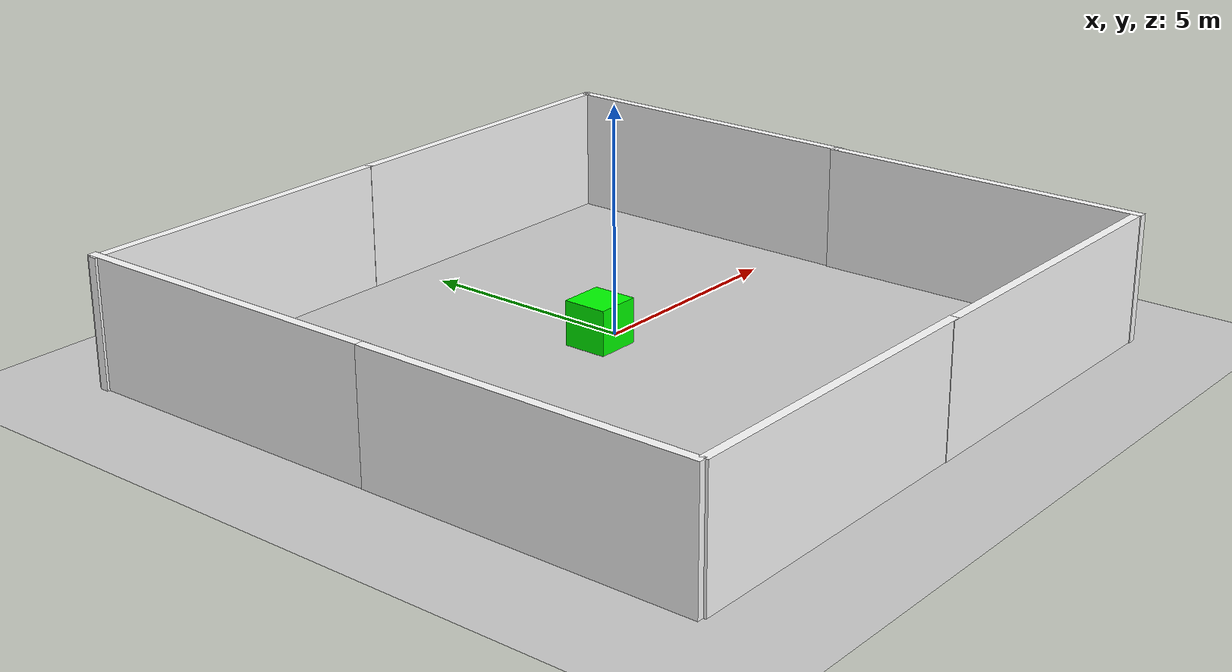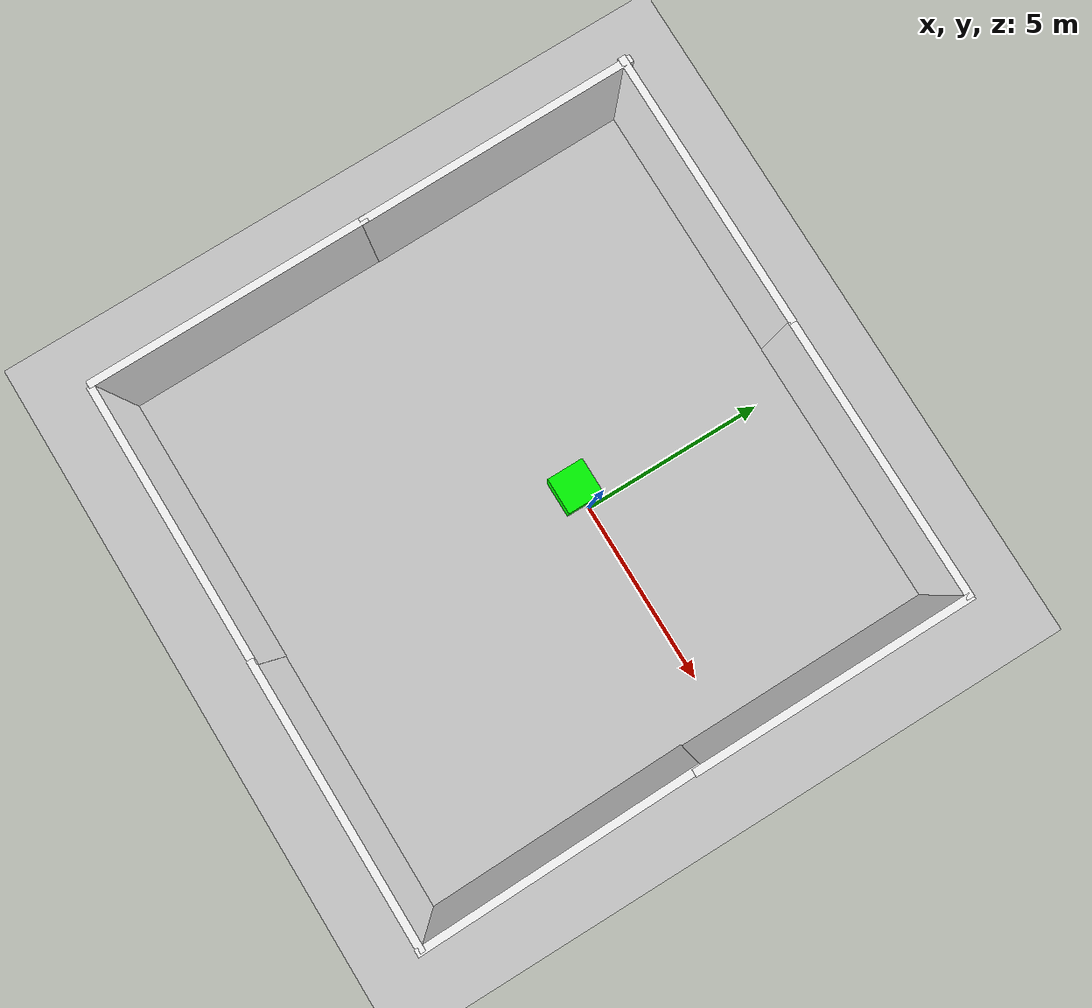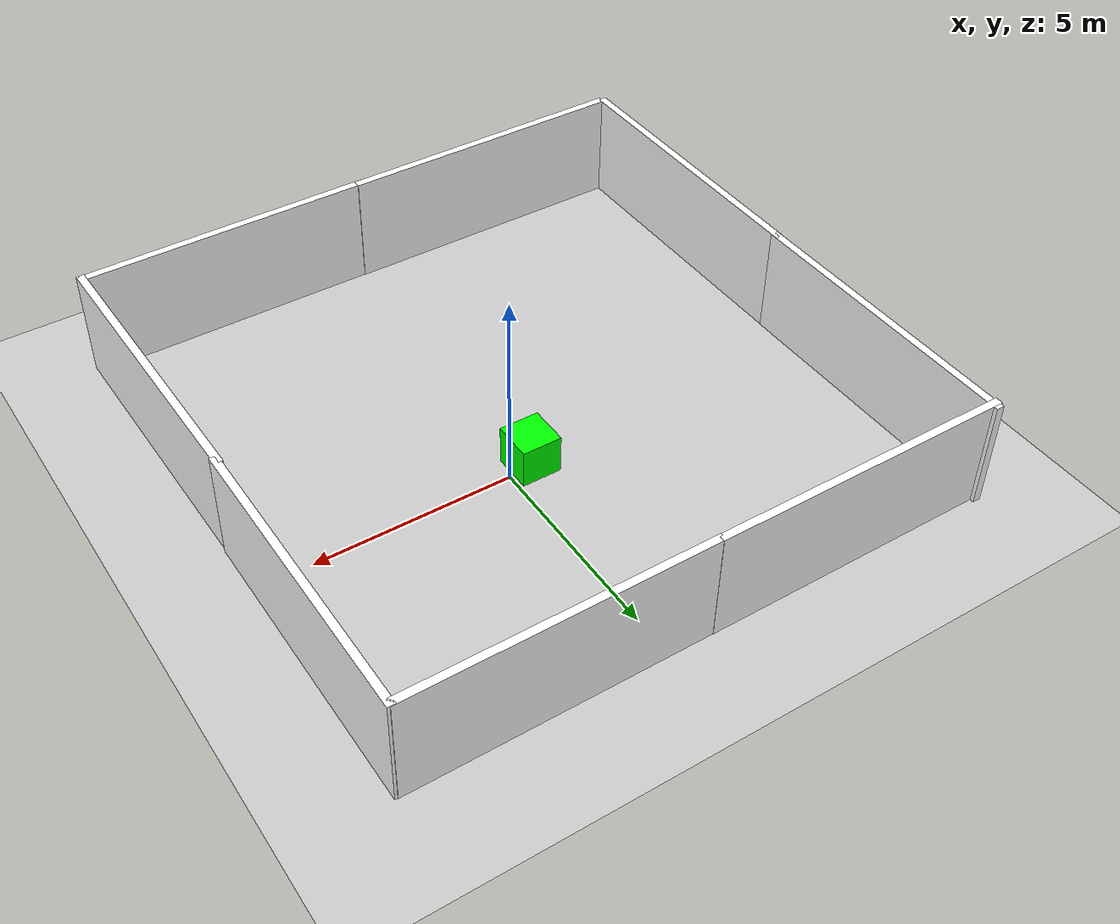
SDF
<?xml version="1.0" ?>
<sdf version='1.10'>
  <world name='empty'>
    <physics name='1ms' type='ignored'>
      <max_step_size>0.001</max_step_size>
      <real_time_factor>1</real_time_factor>
      <real_time_update_rate>1000</real_time_update_rate>
    </physics>
    <plugin name='gz::sim::systems::Physics' filename='gz-sim-physics-system'/>
    <plugin name='gz::sim::systems::UserCommands' filename='gz-sim-user-commands-system'/>
    <plugin name='gz::sim::systems::SceneBroadcaster' filename='gz-sim-scene-broadcaster-system'/>
    <plugin name='gz::sim::systems::Contact' filename='gz-sim-contact-system'/>
    <!-- Generates rendering sensor data -->
    <plugin
      filename="libgz-sim-sensors-system.so"
      name="gz::sim::systems::Sensors">
      <!-- ogre2 not working with just the MESA_GL_VERSION_OVERRIDE=3.3 trick -->
      <render_engine>ogre</render_engine>
    </plugin>

    <gravity>0 0 -9.8000000000000007</gravity>
    <magnetic_field>5.5644999999999998e-06 2.2875799999999999e-05 -4.2388400000000002e-05</magnetic_field>
    <atmosphere type='adiabatic'/>
    <scene>
      <ambient>0.400000006 0.400000006 0.400000006 1</ambient>
      <background>0.699999988 0.699999988 0.699999988 1</background>
      <shadows>true</shadows>
    </scene>
    <model name='ground_plane'>
      <static>true</static>
      <link name='link'>
        <collision name='collision'>
          <geometry>
            <plane>
              <normal>0 0 1</normal>
              <size>100 100</size>
            </plane>
          </geometry>
          <surface>
            <friction>
              <ode/>
            </friction>
            <bounce/>
            <contact/>
          </surface>
        </collision>
        <visual name='visual'>
          <geometry>
            <plane>
              <normal>0 0 1</normal>
              <size>100 100</size>
            </plane>
          </geometry>
          <material>
            <ambient>0.800000012 0.800000012 0.800000012 1</ambient>
            <diffuse>0.800000012 0.800000012 0.800000012 1</diffuse>
            <specular>0.800000012 0.800000012 0.800000012 1</specular>
          </material>
        </visual>
        <pose>0 0 0 0 0 0</pose>
        <inertial>
          <pose>0 0 0 0 0 0</pose>
          <mass>1</mass>
          <inertia>
            <ixx>1</ixx>
            <ixy>0</ixy>
            <ixz>0</ixz>
            <iyy>1</iyy>
            <iyz>0</iyz>
            <izz>1</izz>
          </inertia>
        </inertial>
        <enable_wind>false</enable_wind>
      </link>
      <pose>0 0 0 0 0 0</pose>
      <self_collide>false</self_collide>
    </model>
    <model name='grey_wall'>
      <static>true</static>
      <link name='link'>
        <pose>0 0 1.3999999999999999 0 0 0</pose>
        <collision name='collision'>
          <geometry>
            <box>
              <size>7.5 0.20000000000000001 2.7999999999999998</size>
            </box>
          </geometry>
          <surface>
            <friction>
              <ode/>
            </friction>
            <bounce/>
            <contact/>
          </surface>
        </collision>
        <visual name='visual'>
          <cast_shadows>false</cast_shadows>
          <geometry>
            <box>
              <size>7.5 0.20000000000000001 2.7999999999999998</size>
            </box>
          </geometry>
          <material>
            <diffuse>1 1 1 1</diffuse>
            <specular>1 1 1 1</specular>
            <ambient>1 1 1 1</ambient>
            <pbr>
              <metal>
                <albedo_map>model://grey_wall/materials/textures/grey_wall.png</albedo_map>
              </metal>
            </pbr>
          </material>
        </visual>
        <inertial>
          <pose>0 0 0 0 0 0</pose>
          <mass>1</mass>
          <inertia>
            <ixx>1</ixx>
            <ixy>0</ixy>
            <ixz>0</ixz>
            <iyy>1</iyy>
            <iyz>0</iyz>
            <izz>1</izz>
          </inertia>
        </inertial>
        <enable_wind>false</enable_wind>
      </link>
      <pose>2.5893099308013916 6.0323982238769531 0 0 0 0</pose>
      <self_collide>false</self_collide>
    </model>
    <model name='grey_wall_0'>
      <static>true</static>
      <link name='link'>
        <pose>0 0 1.3999999999999999 0 0 0</pose>
        <collision name='collision'>
          <geometry>
            <box>
              <size>7.5 0.20000000000000001 2.7999999999999998</size>
            </box>
          </geometry>
          <surface>
            <friction>
              <ode/>
            </friction>
            <bounce/>
            <contact/>
          </surface>
        </collision>
        <visual name='visual'>
          <cast_shadows>false</cast_shadows>
          <geometry>
            <box>
              <size>7.5 0.20000000000000001 2.7999999999999998</size>
            </box>
          </geometry>
          <material>
            <diffuse>1 1 1 1</diffuse>
            <specular>1 1 1 1</specular>
            <ambient>1 1 1 1</ambient>
            <pbr>
              <metal>
                <albedo_map>model://grey_wall/materials/textures/grey_wall.png</albedo_map>
              </metal>
            </pbr>
          </material>
        </visual>
        <inertial>
          <pose>0 0 0 0 0 0</pose>
          <mass>1</mass>
          <inertia>
            <ixx>1</ixx>
            <ixy>0</ixy>
            <ixz>0</ixz>
            <iyy>1</iyy>
            <iyz>0</iyz>
            <izz>1</izz>
          </inertia>
        </inertial>
        <enable_wind>false</enable_wind>
      </link>
      <pose>-4.8437652587890625 6.0395498275756836 0 0 0 0</pose>
      <self_collide>false</self_collide>
    </model>
    <model name='grey_wall_1'>
      <static>true</static>
      <link name='link'>
        <pose>0 0 1.3999999999999999 0 0 0</pose>
        <collision name='collision'>
          <geometry>
            <box>
              <size>7.5 0.20000000000000001 2.7999999999999998</size>
            </box>
          </geometry>
          <surface>
            <friction>
              <ode/>
            </friction>
            <bounce/>
            <contact/>
          </surface>
        </collision>
        <visual name='visual'>
          <cast_shadows>false</cast_shadows>
          <geometry>
            <box>
              <size>7.5 0.20000000000000001 2.7999999999999998</size>
            </box>
          </geometry>
          <material>
            <diffuse>1 1 1 1</diffuse>
            <specular>1 1 1 1</specular>
            <ambient>1 1 1 1</ambient>
            <pbr>
              <metal>
                <albedo_map>model://grey_wall/materials/textures/grey_wall.png</albedo_map>
              </metal>
            </pbr>
          </material>
        </visual>
        <inertial>
          <pose>0 0 0 0 0 0</pose>
          <mass>1</mass>
          <inertia>
            <ixx>1</ixx>
            <ixy>0</ixy>
            <ixz>0</ixz>
            <iyy>1</iyy>
            <iyz>0</iyz>
            <izz>1</izz>
          </inertia>
        </inertial>
        <enable_wind>false</enable_wind>
      </link>
      <pose>6.37833595275879 -4.9182934761047372 2.2204460492503131e-16 0 0 1.58841001094067</pose>
      <self_collide>false</self_collide>
    </model>
    <model name='grey_wall_2'>
      <static>true</static>
      <link name='link'>
        <pose>0 0 1.3999999999999999 0 0 0</pose>
        <collision name='collision'>
          <geometry>
            <box>
              <size>7.5 0.20000000000000001 2.7999999999999998</size>
            </box>
          </geometry>
          <surface>
            <friction>
              <ode/>
            </friction>
            <bounce/>
            <contact/>
          </surface>
        </collision>
        <visual name='visual'>
          <cast_shadows>false</cast_shadows>
          <geometry>
            <box>
              <size>7.5 0.20000000000000001 2.7999999999999998</size>
            </box>
          </geometry>
          <material>
            <diffuse>1 1 1 1</diffuse>
            <specular>1 1 1 1</specular>
            <ambient>1 1 1 1</ambient>
            <pbr>
              <metal>
                <albedo_map>model://grey_wall/materials/textures/grey_wall.png</albedo_map>
              </metal>
            </pbr>
          </material>
        </visual>
        <inertial>
          <pose>0 0 0 0 0 0</pose>
          <mass>1</mass>
          <inertia>
            <ixx>1</ixx>
            <ixy>0</ixy>
            <ixz>0</ixz>
            <iyy>1</iyy>
            <iyz>0</iyz>
            <izz>1</izz>
          </inertia>
        </inertial>
        <enable_wind>false</enable_wind>
      </link>
      <pose>2.7442200183868408 -8.5496883392333984 0 0 0 0</pose>
      <self_collide>false</self_collide>
    </model>
    <model name='grey_wall_3'>
      <static>true</static>
      <link name='link'>
        <pose>0 0 1.3999999999999999 0 0 0</pose>
        <collision name='collision'>
          <geometry>
            <box>
              <size>7.5 0.20000000000000001 2.7999999999999998</size>
            </box>
          </geometry>
          <surface>
            <friction>
              <ode/>
            </friction>
            <bounce/>
            <contact/>
          </surface>
        </collision>
        <visual name='visual'>
          <cast_shadows>false</cast_shadows>
          <geometry>
            <box>
              <size>7.5 0.20000000000000001 2.7999999999999998</size>
            </box>
          </geometry>
          <material>
            <diffuse>1 1 1 1</diffuse>
            <specular>1 1 1 1</specular>
            <ambient>1 1 1 1</ambient>
            <pbr>
              <metal>
                <albedo_map>model://grey_wall/materials/textures/grey_wall.png</albedo_map>
              </metal>
            </pbr>
          </material>
        </visual>
        <inertial>
          <pose>0 0 0 0 0 0</pose>
          <mass>1</mass>
          <inertia>
            <ixx>1</ixx>
            <ixy>0</ixy>
            <ixz>0</ixz>
            <iyy>1</iyy>
            <iyz>0</iyz>
            <izz>1</izz>
          </inertia>
        </inertial>
        <enable_wind>false</enable_wind>
      </link>
      <pose>6.3276057243347177 2.3685169219970708 0 0 0 -1.5653901063495692</pose>
      <self_collide>false</self_collide>
    </model>
    <model name='grey_wall_4'>
      <static>true</static>
      <link name='link'>
        <pose>0 0 1.3999999999999999 0 0 0</pose>
        <collision name='collision'>
          <geometry>
            <box>
              <size>7.5 0.20000000000000001 2.7999999999999998</size>
            </box>
          </geometry>
          <surface>
            <friction>
              <ode/>
            </friction>
            <bounce/>
            <contact/>
          </surface>
        </collision>
        <visual name='visual'>
          <cast_shadows>false</cast_shadows>
          <geometry>
            <box>
              <size>7.5 0.20000000000000001 2.7999999999999998</size>
            </box>
          </geometry>
          <material>
            <diffuse>1 1 1 1</diffuse>
            <specular>1 1 1 1</specular>
            <ambient>1 1 1 1</ambient>
            <pbr>
              <metal>
                <albedo_map>model://grey_wall/materials/textures/grey_wall.png</albedo_map>
              </metal>
            </pbr>
          </material>
        </visual>
        <inertial>
          <pose>0 0 0 0 0 0</pose>
          <mass>1</mass>
          <inertia>
            <ixx>1</ixx>
            <ixy>0</ixy>
            <ixz>0</ixz>
            <iyy>1</iyy>
            <iyz>0</iyz>
            <izz>1</izz>
          </inertia>
        </inertial>
        <enable_wind>false</enable_wind>
      </link>
      <pose>-8.3720035552978533 -4.8251113891601554 2.2204460492503131e-16 0 0 1.5751399084959998</pose>
      <self_collide>false</self_collide>
    </model>
    <model name='grey_wall_5'>
      <static>true</static>
      <link name='link'>
        <pose>0 0 1.3999999999999999 0 0 0</pose>
        <collision name='collision'>
          <geometry>
            <box>
              <size>7.5 0.20000000000000001 2.7999999999999998</size>
            </box>
          </geometry>
          <surface>
            <friction>
              <ode/>
            </friction>
            <bounce/>
            <contact/>
          </surface>
        </collision>
        <visual name='visual'>
          <cast_shadows>false</cast_shadows>
          <geometry>
            <box>
              <size>7.5 0.20000000000000001 2.7999999999999998</size>
            </box>
          </geometry>
          <material>
            <diffuse>1 1 1 1</diffuse>
            <specular>1 1 1 1</specular>
            <ambient>1 1 1 1</ambient>
            <pbr>
              <metal>
                <albedo_map>model://grey_wall/materials/textures/grey_wall.png</albedo_map>
              </metal>
            </pbr>
          </material>
        </visual>
        <inertial>
          <pose>0 0 0 0 0 0</pose>
          <mass>1</mass>
          <inertia>
            <ixx>1</ixx>
            <ixy>0</ixy>
            <ixz>0</ixz>
            <iyy>1</iyy>
            <iyz>0</iyz>
            <izz>1</izz>
          </inertia>
        </inertial>
        <enable_wind>false</enable_wind>
      </link>
      <pose>-8.4096317291259766 2.4861049652099614 0 0 0 -1.5624000895092787</pose>
      <self_collide>false</self_collide>
    </model>
    <model name='grey_wall_6'>
      <static>true</static>
      <link name='link'>
        <pose>0 0 1.3999999999999999 0 0 0</pose>
        <collision name='collision'>
          <geometry>
            <box>
              <size>7.5 0.20000000000000001 2.7999999999999998</size>
            </box>
          </geometry>
          <surface>
            <friction>
              <ode/>
            </friction>
            <bounce/>
            <contact/>
          </surface>
        </collision>
        <visual name='visual'>
          <cast_shadows>false</cast_shadows>
          <geometry>
            <box>
              <size>7.5 0.20000000000000001 2.7999999999999998</size>
            </box>
          </geometry>
          <material>
            <diffuse>1 1 1 1</diffuse>
            <specular>1 1 1 1</specular>
            <ambient>1 1 1 1</ambient>
            <pbr>
              <metal>
                <albedo_map>model://grey_wall/materials/textures/grey_wall.png</albedo_map>
              </metal>
            </pbr>
          </material>
        </visual>
        <inertial>
          <pose>0 0 0 0 0 0</pose>
          <mass>1</mass>
          <inertia>
            <ixx>1</ixx>
            <ixy>0</ixy>
            <ixz>0</ixz>
            <iyy>1</iyy>
            <iyz>0</iyz>
            <izz>1</izz>
          </inertia>
        </inertial>
        <enable_wind>false</enable_wind>
      </link>
      <pose>-4.5637240409851074 -8.5347700119018555 0 0 0 0</pose>
      <self_collide>false</self_collide>
    </model>
    <model name='box'>
      <pose>-0.60566058728806738 -0.081135862176859419 0.49999999990199806 6.2287739151293738e-22 9.3279666454713669e-22 -3.6315533669320137e-22</pose>
      <link name='box_link'>
        <inertial>
          <inertia>
            <ixx>0.16666</ixx>
            <ixy>0</ixy>
            <ixz>0</ixz>
            <iyy>0.16666</iyy>
            <iyz>0</iyz>
            <izz>0.16666</izz>
          </inertia>
          <mass>1</mass>
          <pose>0 0 0 0 0 0</pose>
        </inertial>
        <collision name='box_collision'>
          <geometry>
            <box>
              <size>1 1 1</size>
            </box>
          </geometry>
          <surface>
            <friction>
              <ode/>
            </friction>
            <bounce/>
            <contact/>
          </surface>
        </collision>
        <visual name='box_visual'>
          <geometry>
            <box>
              <size>1 1 1</size>
            </box>
          </geometry>
          <material>
            <ambient>0.00 1.0 0.00 1</ambient>
            <diffuse>0.00 1.0 0.00 1</diffuse>
            <specular>1 1 1 1</specular>
          </material>
        </visual>
        <pose>0 0 0 0 0 0</pose>
        <enable_wind>false</enable_wind>
      </link>
      <static>false</static>
      <self_collide>false</self_collide>
    </model>
    <light name='sun' type='directional'>
      <pose>0 0 10 0 0 0</pose>
      <cast_shadows>true</cast_shadows>
      <intensity>1</intensity>
      <direction>-0.5 0.10000000000000001 -0.90000000000000002</direction>
      <diffuse>0.800000012 0.800000012 0.800000012 1</diffuse>
      <specular>0.200000003 0.200000003 0.200000003 1</specular>
      <attenuation>
        <range>1000</range>
        <linear>0.0099999997764825821</linear>
        <constant>0.89999997615814209</constant>
        <quadratic>0.0010000000474974513</quadratic>
      </attenuation>
      <spot>
        <inner_angle>0</inner_angle>
        <outer_angle>0</outer_angle>
        <falloff>0</falloff>
      </spot>
    </light>
  </world>
</sdf>
